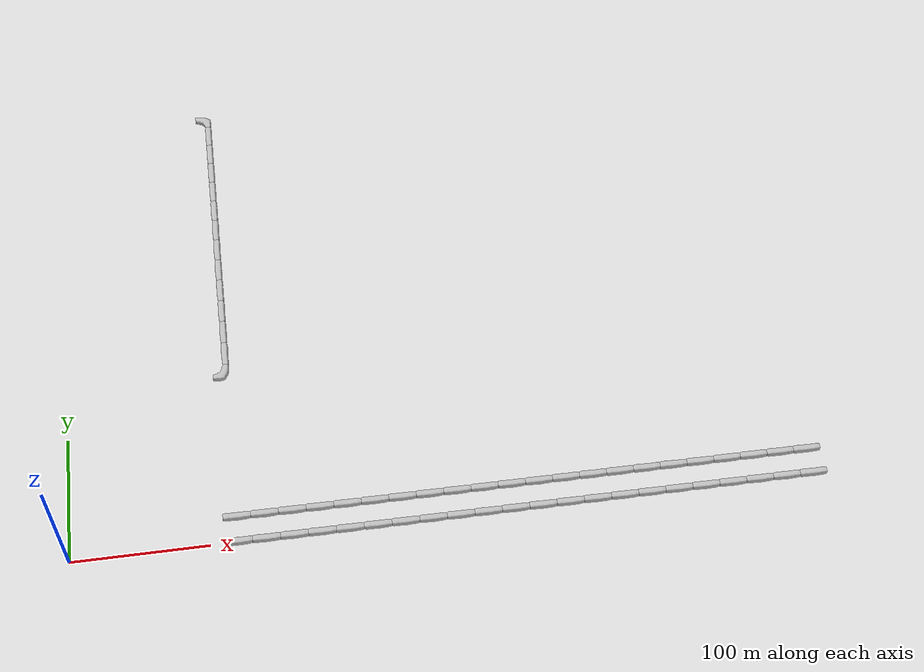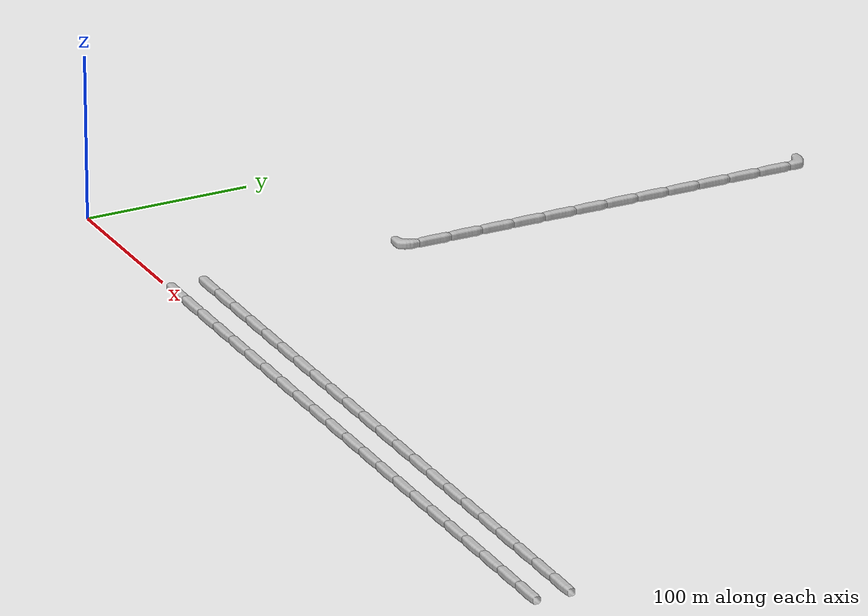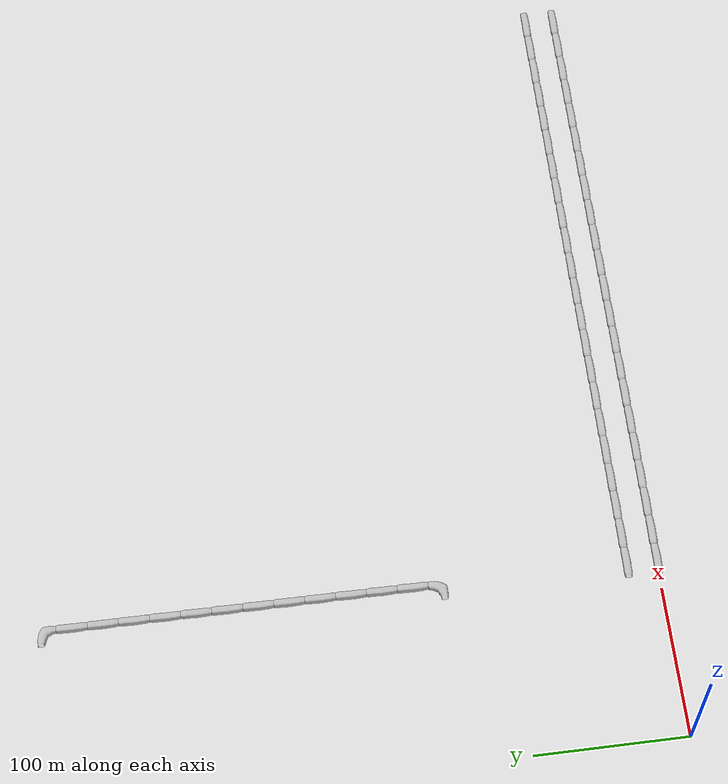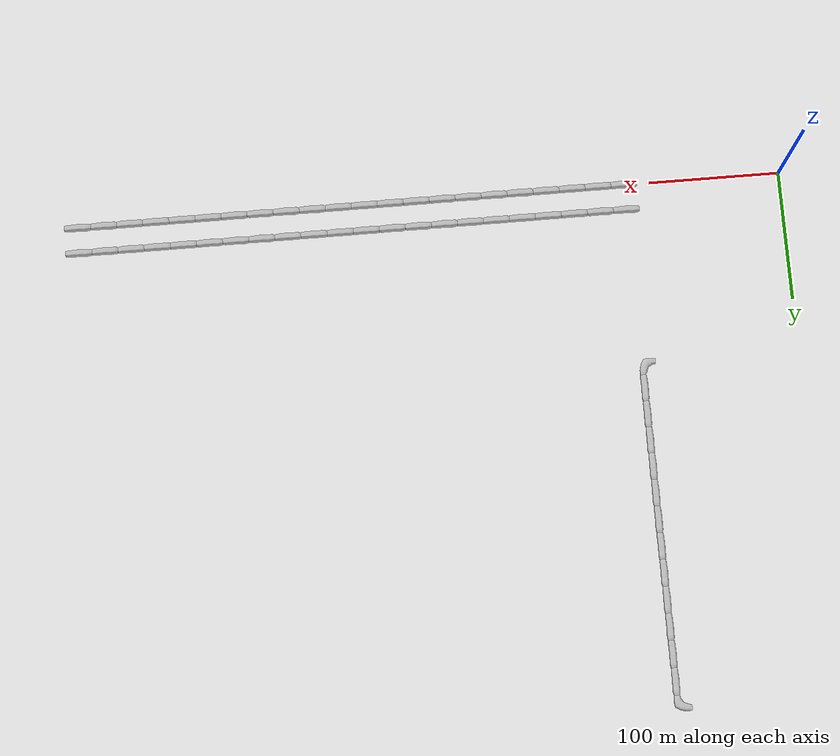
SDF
<sdf version="1.6">
 <world name="cave_32000_0">
  <include>
   <static>true</static>
   <name>cave_6_0</name>
   <pose>120 0 0 0 0 1.5707963267948966</pose>
   <uri>model://cave_straight_20m</uri>
  </include>
  <include>
   <static>true</static>
   <name>cave_7_0</name>
   <pose>140 0 0 0 0 1.5707963267948966</pose>
   <uri>model://cave_straight_20m</uri>
  </include>
  <include>
   <static>true</static>
   <name>cave_8_0</name>
   <pose>160 0 0 0 0 1.5707963267948966</pose>
   <uri>model://cave_straight_20m</uri>
  </include>
  <include>
   <static>true</static>
   <name>cave_9_0</name>
   <pose>180 0 0 0 0 1.5707963267948966</pose>
   <uri>model://cave_straight_20m</uri>
  </include>
  <include>
   <static>true</static>
   <name>cave_10_0</name>
   <pose>200 0 0 0 0 1.5707963267948966</pose>
   <uri>model://cave_straight_20m</uri>
  </include>
  <include>
   <static>true</static>
   <name>cave_11_0</name>
   <pose>220 0 0 0 0 1.5707963267948966</pose>
   <uri>model://cave_straight_20m</uri>
  </include>
  <include>
   <static>true</static>
   <name>cave_12_0</name>
   <pose>240 0 0 0 0 1.5707963267948966</pose>
   <uri>model://cave_straight_20m</uri>
  </include>
  <include>
   <static>true</static>
   <name>cave_13_0</name>
   <pose>260 0 0 0 0 1.5707963267948966</pose>
   <uri>model://cave_straight_20m</uri>
  </include>
  <include>
   <static>true</static>
   <name>cave_14_0</name>
   <pose>280 0 0 0 0 1.5707963267948966</pose>
   <uri>model://cave_straight_20m</uri>
  </include>
  <include>
   <static>true</static>
   <name>cave_15_0</name>
   <pose>300 0 0 0 0 1.5707963267948966</pose>
   <uri>model://cave_straight_20m</uri>
  </include>
  <include>
   <static>true</static>
   <name>cave_16_0</name>
   <pose>320 0 0 0 0 1.5707963267948966</pose>
   <uri>model://cave_straight_20m</uri>
  </include>
  <include>
   <static>true</static>
   <name>cave_17_0</name>
   <pose>340 0 0 0 0 1.5707963267948966</pose>
   <uri>model://cave_straight_20m</uri>
  </include>
  <include>
   <static>true</static>
   <name>cave_18_0</name>
   <pose>360 0 0 0 0 1.5707963267948966</pose>
   <uri>model://cave_straight_20m</uri>
  </include>
  <include>
   <static>true</static>
   <name>cave_19_0</name>
   <pose>380 0 0 0 0 1.5707963267948966</pose>
   <uri>model://cave_straight_20m</uri>
  </include>
  <include>
   <static>true</static>
   <name>cave_20_0</name>
   <pose>400 0 0 0 0 1.5707963267948966</pose>
   <uri>model://cave_straight_20m</uri>
  </include>
  <include>
   <static>true</static>
   <name>cave_21_0</name>
   <pose>420 0 0 0 0 1.5707963267948966</pose>
   <uri>model://cave_straight_20m</uri>
  </include>
  <include>
   <static>true</static>
   <name>cave_22_0</name>
   <pose>440 0 0 0 0 1.5707963267948966</pose>
   <uri>model://cave_straight_20m</uri>
  </include>
  <include>
   <static>true</static>
   <name>cave_23_0</name>
   <pose>460 0 0 0 0 1.5707963267948966</pose>
   <uri>model://cave_straight_20m</uri>
  </include>
  <include>
   <static>true</static>
   <name>cave_24_0</name>
   <pose>480 0 0 0 0 1.5707963267948966</pose>
   <uri>model://cave_straight_20m</uri>
  </include>
  <include>
   <static>true</static>
   <name>cave_25_0</name>
   <pose>500 0 0 0 0 1.5707963267948966</pose>
   <uri>model://cave_straight_20m</uri>
  </include>
  <include>
   <static>true</static>
   <name>cave_26_0</name>
   <pose>520 0 0 0 0 1.5707963267948966</pose>
   <uri>model://cave_straight_20m</uri>
  </include>
  <include>
   <static>true</static>
   <name>cave_27_0</name>
   <pose>540 0 0 0 0 1.5707963267948966</pose>
   <uri>model://cave_straight_20m</uri>
  </include>
  <include>
   <static>true</static>
   <name>cave_6_1</name>
   <pose>120 20 0 0 0 1.5707963267948966</pose>
   <uri>model://cave_straight_20m</uri>
  </include>
  <include>
   <static>true</static>
   <name>cave_7_1</name>
   <pose>140 20 0 0 0 1.5707963267948966</pose>
   <uri>model://cave_straight_20m</uri>
  </include>
  <include>
   <static>true</static>
   <name>cave_8_1</name>
   <pose>160 20 0 0 0 1.5707963267948966</pose>
   <uri>model://cave_straight_20m</uri>
  </include>
  <include>
   <static>true</static>
   <name>cave_9_1</name>
   <pose>180 20 0 0 0 1.5707963267948966</pose>
   <uri>model://cave_straight_20m</uri>
  </include>
  <include>
   <static>true</static>
   <name>cave_10_1</name>
   <pose>200 20 0 0 0 1.5707963267948966</pose>
   <uri>model://cave_straight_20m</uri>
  </include>
  <include>
   <static>true</static>
   <name>cave_11_1</name>
   <pose>220 20 0 0 0 1.5707963267948966</pose>
   <uri>model://cave_straight_20m</uri>
  </include>
  <include>
   <static>true</static>
   <name>cave_12_1</name>
   <pose>240 20 0 0 0 1.5707963267948966</pose>
   <uri>model://cave_straight_20m</uri>
  </include>
  <include>
   <static>true</static>
   <name>cave_13_1</name>
   <pose>260 20 0 0 0 1.5707963267948966</pose>
   <uri>model://cave_straight_20m</uri>
  </include>
  <include>
   <static>true</static>
   <name>cave_14_1</name>
   <pose>280 20 0 0 0 1.5707963267948966</pose>
   <uri>model://cave_straight_20m</uri>
  </include>
  <include>
   <static>true</static>
   <name>cave_15_1</name>
   <pose>300 20 0 0 0 1.5707963267948966</pose>
   <uri>model://cave_straight_20m</uri>
  </include>
  <include>
   <static>true</static>
   <name>cave_16_1</name>
   <pose>320 20 0 0 0 1.5707963267948966</pose>
   <uri>model://cave_straight_20m</uri>
  </include>
  <include>
   <static>true</static>
   <name>cave_17_1</name>
   <pose>340 20 0 0 0 1.5707963267948966</pose>
   <uri>model://cave_straight_20m</uri>
  </include>
  <include>
   <static>true</static>
   <name>cave_18_1</name>
   <pose>360 20 0 0 0 1.5707963267948966</pose>
   <uri>model://cave_straight_20m</uri>
  </include>
  <include>
   <static>true</static>
   <name>cave_19_1</name>
   <pose>380 20 0 0 0 1.5707963267948966</pose>
   <uri>model://cave_straight_20m</uri>
  </include>
  <include>
   <static>true</static>
   <name>cave_20_1</name>
   <pose>400 20 0 0 0 1.5707963267948966</pose>
   <uri>model://cave_straight_20m</uri>
  </include>
  <include>
   <static>true</static>
   <name>cave_21_1</name>
   <pose>420 20 0 0 0 1.5707963267948966</pose>
   <uri>model://cave_straight_20m</uri>
  </include>
  <include>
   <static>true</static>
   <name>cave_22_1</name>
   <pose>440 20 0 0 0 1.5707963267948966</pose>
   <uri>model://cave_straight_20m</uri>
  </include>
  <include>
   <static>true</static>
   <name>cave_23_1</name>
   <pose>460 20 0 0 0 1.5707963267948966</pose>
   <uri>model://cave_straight_20m</uri>
  </include>
  <include>
   <static>true</static>
   <name>cave_24_1</name>
   <pose>480 20 0 0 0 1.5707963267948966</pose>
   <uri>model://cave_straight_20m</uri>
  </include>
  <include>
   <static>true</static>
   <name>cave_25_1</name>
   <pose>500 20 0 0 0 1.5707963267948966</pose>
   <uri>model://cave_straight_20m</uri>
  </include>
  <include>
   <static>true</static>
   <name>cave_26_1</name>
   <pose>520 20 0 0 0 1.5707963267948966</pose>
   <uri>model://cave_straight_20m</uri>
  </include>
  <include>
   <static>true</static>
   <name>cave_27_1</name>
   <pose>540 20 0 0 0 1.5707963267948966</pose>
   <uri>model://cave_straight_20m</uri>
  </include>
  <include>
   <static>true</static>
   <name>cave_6_20</name>
   <pose>120 400 0 0 0 3.141592653589793</pose>
   <uri>model://cave_L_20m</uri>
  </include>
  <include>
   <static>true</static>
   <name>cave_6_19</name>
   <pose>120 380 0 0 0 0.0</pose>
   <uri>model://cave_straight_20m</uri>
  </include>
  <include>
   <static>true</static>
   <name>cave_6_18</name>
   <pose>120 360 0 0 0 0.0</pose>
   <uri>model://cave_straight_20m</uri>
  </include>
  <include>
   <static>true</static>
   <name>cave_6_17</name>
   <pose>120 340 0 0 0 0.0</pose>
   <uri>model://cave_straight_20m</uri>
  </include>
  <include>
   <static>true</static>
   <name>cave_6_16</name>
   <pose>120 320 0 0 0 0.0</pose>
   <uri>model://cave_straight_20m</uri>
  </include>
  <include>
   <static>true</static>
   <name>cave_6_15</name>
   <pose>120 300 0 0 0 0.0</pose>
   <uri>model://cave_straight_20m</uri>
  </include>
  <include>
   <static>true</static>
   <name>cave_6_14</name>
   <pose>120 280 0 0 0 0.0</pose>
   <uri>model://cave_straight_20m</uri>
  </include>
  <include>
   <static>true</static>
   <name>cave_6_13</name>
   <pose>120 260 0 0 0 0.0</pose>
   <uri>model://cave_straight_20m</uri>
  </include>
  <include>
   <static>true</static>
   <name>cave_6_12</name>
   <pose>120 240 0 0 0 0.0</pose>
   <uri>model://cave_straight_20m</uri>
  </include>
  <include>
   <static>true</static>
   <name>cave_6_11</name>
   <pose>120 220 0 0 0 0.0</pose>
   <uri>model://cave_straight_20m</uri>
  </include>
  <include>
   <static>true</static>
   <name>cave_6_10</name>
   <pose>120 200 0 0 0 0.0</pose>
   <uri>model://cave_straight_20m</uri>
  </include>
  <include>
   <static>true</static>
   <name>cave_6_9</name>
   <pose>120 180 0 0 0 0.0</pose>
   <uri>model://cave_straight_20m</uri>
  </include>
  <include>
   <static>true</static>
   <name>cave_6_8</name>
   <pose>120 160 0 0 0 0.0</pose>
   <uri>model://cave_straight_20m</uri>
  </include>
  <include>
   <static>true</static>
   <name>cave_6_7</name>
   <pose>120 140 0 0 0 1.5707963267948966</pose>
   <uri>model://cave_L_20m</uri>
  </include>
 </world>
</sdf>
